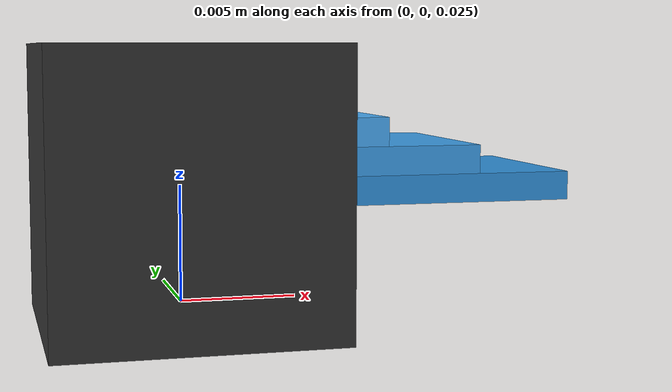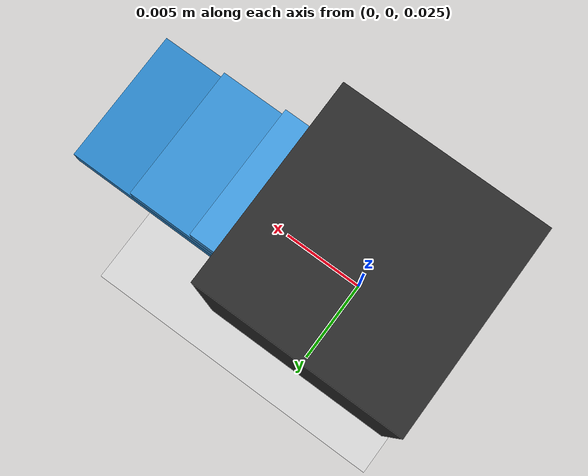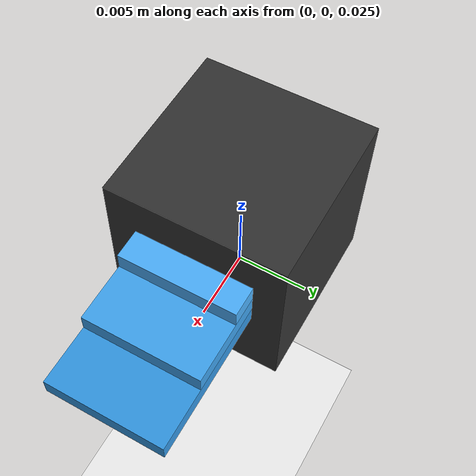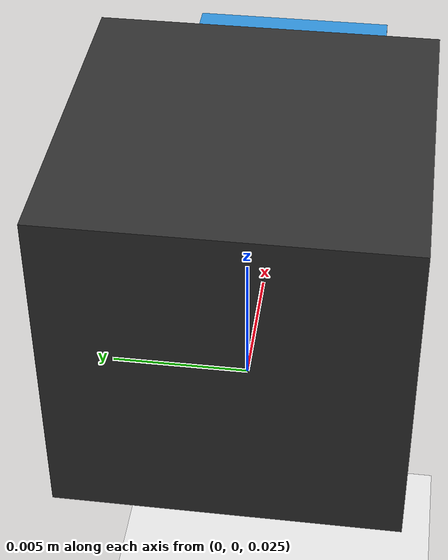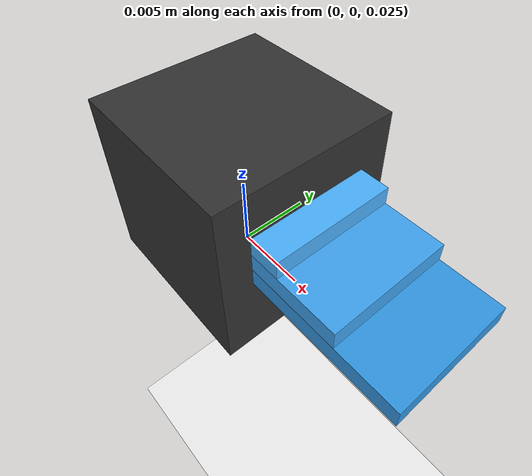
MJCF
<mujoco model="quarter_elliptic_laminated">
  <option timestep="0.001" gravity="0 0 -9.81" integrator="implicitfast"/>
  <compiler angle="radian" autolimits="true"/>

  <default>
    <geom friction="1 0.01 0.001"
          solref="0.01 1"
          solimp="0.95 0.99 0.001"/>
    <joint damping="0.001" limited="true" range="-1.2 1.2"/>
  </default>

  <worldbody>

    <geom name="ground" type="plane"
          size="2 2 0.1" rgba="0.95 0.95 0.95 1"/>

    <!-- Base -->
    <body name="base" pos="0 0 0.03">
      <geom type="box" size="0.006 0.006 0.006"
            rgba="0.2 0.2 0.2 1"/>

      <!-- LEAF 1 (longest) -->
      <body name="leaf1" pos="0 0 0.000">
        <joint name="j1" type="hinge" axis="0 1 0" stiffness="0.02"/>

        <geom type="box"
              pos="0.008 0 0"
              size="0.008 0.004 0.0006"
              rgba="0.2 0.6 0.9 1"/>

        <inertial pos="0.008 0 0"
                  mass="0.002"
                  diaginertia="2e-7 2e-7 2e-7"/>
      </body>

      <!-- LEAF 2 -->
      <body name="leaf2" pos="0 0 0.0012">
        <joint name="j2" type="hinge" axis="0 1 0" stiffness="0.02"/>

        <geom type="box"
              pos="0.006 0 0"
              size="0.006 0.004 0.0006"
              rgba="0.25 0.65 0.95 1"/>

        <inertial pos="0.006 0 0"
                  mass="0.0018"
                  diaginertia="2e-7 2e-7 2e-7"/>
      </body>

      <!-- LEAF 3 -->
      <body name="leaf3" pos="0 0 0.0024">
        <joint name="j3" type="hinge" axis="0 1 0" stiffness="0.02"/>

        <geom type="box"
              pos="0.004 0 0"
              size="0.004 0.004 0.0006"
              rgba="0.3 0.7 1 1"/>

        <inertial pos="0.004 0 0"
                  mass="0.0015"
                  diaginertia="2e-7 2e-7 2e-7"/>
      </body>

      <!-- LEAF 4 (shortest) -->
      <body name="leaf4" pos="0 0 0.0036">
        <joint name="j4" type="hinge" axis="0 1 0" stiffness="0.02"/>

        <geom type="box"
              pos="0.002 0 0"
              size="0.002 0.004 0.0006"
              rgba="0.35 0.75 1 1"/>

        <inertial pos="0.002 0 0"
                  mass="0.001"
                  diaginertia="2e-7 2e-7 2e-7"/>

        <site name="tip_site" pos="0.002 0 0"
              size="0.001" rgba="1 0 0 1"/>
      </body>

    </body>

  </worldbody>
</mujoco>
